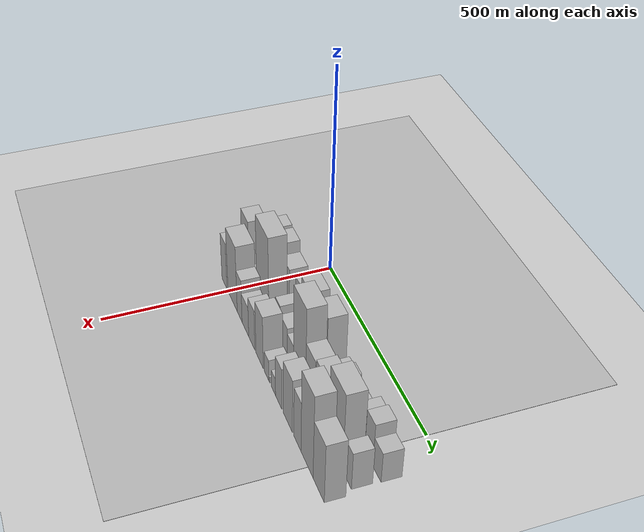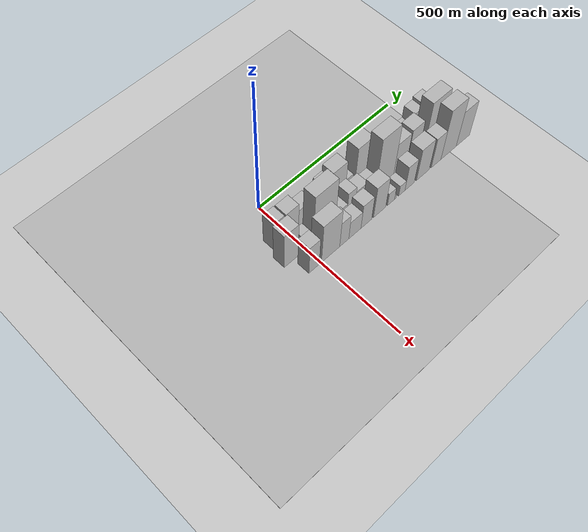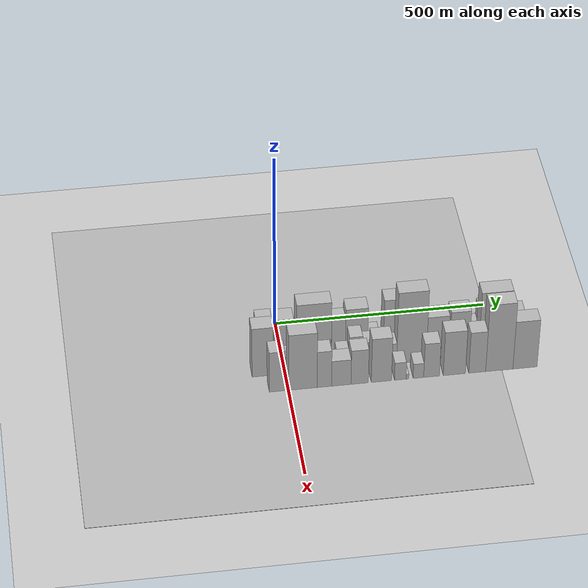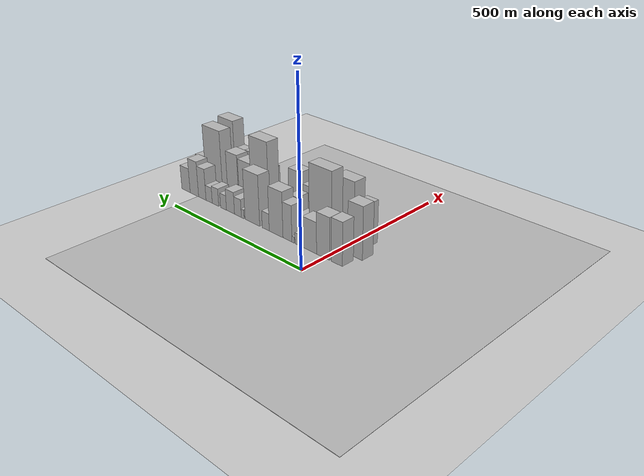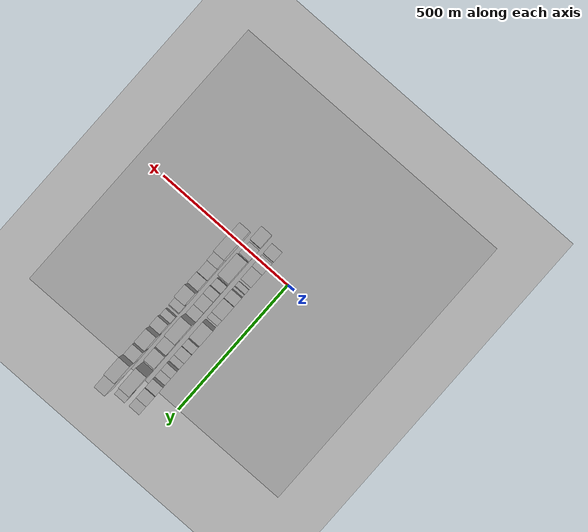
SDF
<sdf version="1.6">
 <world name="default">
  <include><name>ground_plane_1</name><uri>model://HANNAS_ground_plane</uri></include>
  <include>
   <name>ground_plane_2</name>
   <uri>model://HANNAS_ground_plane</uri>
   <pose>100 0 0  0 0 0</pose>
  </include>
  <model name="building_17">
   <static>1</static>
   <pose>100.0000 -41.7449 0 0.000000 0.000000 0.000000</pose>
   <link name="link">
    <pose>0 0 61.50 0 0 0</pose>
    <collision name="collision"><geometry><box><size>40.0000 38.1003 123.0000</size></box></geometry></collision>
    <visual name="visual">
     <cast_shadows>0</cast_shadows>
     <geometry><box><size>40.0000 38.1003 123.0000</size></box></geometry>
     <material>
      <script>
       <uri>model://HANNAS_wall/materials/scripts</uri>
       <uri>model://HANNAS_wall/materials/textures</uri>
       <name>vrc/HANNAS_wall</name>
      </script>
     </material>
    </visual>
   </link>
  </model>
  <model name="building_18">
   <static>1</static>
   <pose>100.0000 4.8909 0 0.000000 0.000000 0.000000</pose>
   <link name="link">
    <pose>0 0 60.00 0 0 0</pose>
    <collision name="collision"><geometry><box><size>40.0000 45.1713 120.0000</size></box></geometry></collision>
    <visual name="visual">
     <cast_shadows>0</cast_shadows>
     <geometry><box><size>40.0000 45.1713 120.0000</size></box></geometry>
     <material>
      <script>
       <uri>model://HANNAS_wall/materials/scripts</uri>
       <uri>model://HANNAS_wall/materials/textures</uri>
       <name>vrc/HANNAS_wall</name>
      </script>
     </material>
    </visual>
   </link>
  </model>
  <model name="building_19">
   <static>1</static>
   <pose>100.0000 52.0612 0 0.000000 0.000000 0.000000</pose>
   <link name="link">
    <pose>0 0 45.00 0 0 0</pose>
    <collision name="collision"><geometry><box><size>40.0000 49.1694 90.0000</size></box></geometry></collision>
    <visual name="visual">
     <cast_shadows>0</cast_shadows>
     <geometry><box><size>40.0000 49.1694 90.0000</size></box></geometry>
     <material>
      <script>
       <uri>model://HANNAS_wall/materials/scripts</uri>
       <uri>model://HANNAS_wall/materials/textures</uri>
       <name>vrc/HANNAS_wall</name>
      </script>
     </material>
    </visual>
   </link>
  </model>
  <model name="building_20">
   <static>1</static>
   <pose>100.0000 95.6489 0 0.000000 0.000000 0.000000</pose>
   <link name="link">
    <pose>0 0 16.50 0 0 0</pose>
    <collision name="collision"><geometry><box><size>40.0000 18.0059 33.0000</size></box></geometry></collision>
    <visual name="visual">
     <cast_shadows>0</cast_shadows>
     <geometry><box><size>40.0000 18.0059 33.0000</size></box></geometry>
     <material>
      <script>
       <uri>model://HANNAS_wall/materials/scripts</uri>
       <uri>model://HANNAS_wall/materials/textures</uri>
       <name>vrc/HANNAS_wall</name>
      </script>
     </material>
    </visual>
   </link>
  </model>
  <model name="building_21">
   <static>1</static>
   <pose>100.0000 111.9884 0 0.000000 0.000000 0.000000</pose>
   <link name="link">
    <pose>0 0 9.00 0 0 0</pose>
    <collision name="collision"><geometry><box><size>40.0000 8.6732 18.0000</size></box></geometry></collision>
    <visual name="visual">
     <cast_shadows>0</cast_shadows>
     <geometry><box><size>40.0000 8.6732 18.0000</size></box></geometry>
     <material>
      <script>
       <uri>model://HANNAS_wall/materials/scripts</uri>
       <uri>model://HANNAS_wall/materials/textures</uri>
       <name>vrc/HANNAS_wall</name>
      </script>
     </material>
    </visual>
   </link>
  </model>
  <model name="building_22">
   <static>1</static>
   <pose>100.0000 132.8876 0 0.000000 0.000000 0.000000</pose>
   <link name="link">
    <pose>0 0 52.50 0 0 0</pose>
    <collision name="collision"><geometry><box><size>40.0000 33.1251 105.0000</size></box></geometry></collision>
    <visual name="visual">
     <cast_shadows>0</cast_shadows>
     <geometry><box><size>40.0000 33.1251 105.0000</size></box></geometry>
     <material>
      <script>
       <uri>model://HANNAS_wall/materials/scripts</uri>
       <uri>model://HANNAS_wall/materials/textures</uri>
       <name>vrc/HANNAS_wall</name>
      </script>
     </material>
    </visual>
   </link>
  </model>
  <model name="building_23">
   <static>1</static>
   <pose>100.0000 175.6709 0 0.000000 0.000000 0.000000</pose>
   <link name="link">
    <pose>0 0 66.00 0 0 0</pose>
    <collision name="collision"><geometry><box><size>40.0000 52.4415 132.0000</size></box></geometry></collision>
    <visual name="visual">
     <cast_shadows>0</cast_shadows>
     <geometry><box><size>40.0000 52.4415 132.0000</size></box></geometry>
     <material>
      <script>
       <uri>model://HANNAS_wall/materials/scripts</uri>
       <uri>model://HANNAS_wall/materials/textures</uri>
       <name>vrc/HANNAS_wall</name>
      </script>
     </material>
    </visual>
   </link>
  </model>
  <model name="building_24">
   <static>1</static>
   <pose>100.0000 215.5347 0 0.000000 0.000000 0.000000</pose>
   <link name="link">
    <pose>0 0 25.50 0 0 0</pose>
    <collision name="collision"><geometry><box><size>40.0000 27.2861 51.0000</size></box></geometry></collision>
    <visual name="visual">
     <cast_shadows>0</cast_shadows>
     <geometry><box><size>40.0000 27.2861 51.0000</size></box></geometry>
     <material>
      <script>
       <uri>model://HANNAS_wall/materials/scripts</uri>
       <uri>model://HANNAS_wall/materials/textures</uri>
       <name>vrc/HANNAS_wall</name>
      </script>
     </material>
    </visual>
   </link>
  </model>
  <model name="building_25">
   <static>1</static>
   <pose>100.0000 268.4936 0 0.000000 0.000000 0.000000</pose>
   <link name="link">
    <pose>0 0 75.00 0 0 0</pose>
    <collision name="collision"><geometry><box><size>40.0000 58.6317 150.0000</size></box></geometry></collision>
    <visual name="visual">
     <cast_shadows>0</cast_shadows>
     <geometry><box><size>40.0000 58.6317 150.0000</size></box></geometry>
     <material>
      <script>
       <uri>model://HANNAS_wall/materials/scripts</uri>
       <uri>model://HANNAS_wall/materials/textures</uri>
       <name>vrc/HANNAS_wall</name>
      </script>
     </material>
    </visual>
   </link>
  </model>
  <model name="building_26">
   <static>1</static>
   <pose>100.0000 307.4521 0 0.000000 0.000000 0.000000</pose>
   <link name="link">
    <pose>0 0 13.50 0 0 0</pose>
    <collision name="collision"><geometry><box><size>40.0000 11.2853 27.0000</size></box></geometry></collision>
    <visual name="visual">
     <cast_shadows>0</cast_shadows>
     <geometry><box><size>40.0000 11.2853 27.0000</size></box></geometry>
     <material>
      <script>
       <uri>model://HANNAS_wall/materials/scripts</uri>
       <uri>model://HANNAS_wall/materials/textures</uri>
       <name>vrc/HANNAS_wall</name>
      </script>
     </material>
    </visual>
   </link>
  </model>
  <model name="building_27">
   <static>1</static>
   <pose>100.0000 327.2081 0 0.000000 0.000000 0.000000</pose>
   <link name="link">
    <pose>0 0 27.00 0 0 0</pose>
    <collision name="collision"><geometry><box><size>40.0000 28.2266 54.0000</size></box></geometry></collision>
    <visual name="visual">
     <cast_shadows>0</cast_shadows>
     <geometry><box><size>40.0000 28.2266 54.0000</size></box></geometry>
     <material>
      <script>
       <uri>model://HANNAS_wall/materials/scripts</uri>
       <uri>model://HANNAS_wall/materials/textures</uri>
       <name>vrc/HANNAS_wall</name>
      </script>
     </material>
    </visual>
   </link>
  </model>
  <model name="building_28">
   <static>1</static>
   <pose>100.0000 358.2959 0 0.000000 0.000000 0.000000</pose>
   <link name="link">
    <pose>0 0 33.00 0 0 0</pose>
    <collision name="collision"><geometry><box><size>40.0000 33.9491 66.0000</size></box></geometry></collision>
    <visual name="visual">
     <cast_shadows>0</cast_shadows>
     <geometry><box><size>40.0000 33.9491 66.0000</size></box></geometry>
     <material>
      <script>
       <uri>model://HANNAS_wall/materials/scripts</uri>
       <uri>model://HANNAS_wall/materials/textures</uri>
       <name>vrc/HANNAS_wall</name>
      </script>
     </material>
    </visual>
   </link>
  </model>
  <model name="building_29">
   <static>1</static>
   <pose>100.0000 387.8165 0 0.000000 0.000000 0.000000</pose>
   <link name="link">
    <pose>0 0 22.50 0 0 0</pose>
    <collision name="collision"><geometry><box><size>40.0000 25.0919 45.0000</size></box></geometry></collision>
    <visual name="visual">
     <cast_shadows>0</cast_shadows>
     <geometry><box><size>40.0000 25.0919 45.0000</size></box></geometry>
     <material>
      <script>
       <uri>model://HANNAS_wall/materials/scripts</uri>
       <uri>model://HANNAS_wall/materials/textures</uri>
       <name>vrc/HANNAS_wall</name>
      </script>
     </material>
    </visual>
   </link>
  </model>
  <model name="building_30">
   <static>1</static>
   <pose>100.0000 422.3995 0 0.000000 0.000000 0.000000</pose>
   <link name="link">
    <pose>0 0 27.00 0 0 0</pose>
    <collision name="collision"><geometry><box><size>40.0000 28.0742 54.0000</size></box></geometry></collision>
    <visual name="visual">
     <cast_shadows>0</cast_shadows>
     <geometry><box><size>40.0000 28.0742 54.0000</size></box></geometry>
     <material>
      <script>
       <uri>model://HANNAS_wall/materials/scripts</uri>
       <uri>model://HANNAS_wall/materials/textures</uri>
       <name>vrc/HANNAS_wall</name>
      </script>
     </material>
    </visual>
   </link>
  </model>
  <model name="building_31">
   <static>1</static>
   <pose>100.0000 450.1363 0 0.000000 0.000000 0.000000</pose>
   <link name="link">
    <pose>0 0 24.00 0 0 0</pose>
    <collision name="collision"><geometry><box><size>40.0000 27.3993 48.0000</size></box></geometry></collision>
    <visual name="visual">
     <cast_shadows>0</cast_shadows>
     <geometry><box><size>40.0000 27.3993 48.0000</size></box></geometry>
     <material>
      <script>
       <uri>model://HANNAS_wall/materials/scripts</uri>
       <uri>model://HANNAS_wall/materials/textures</uri>
       <name>vrc/HANNAS_wall</name>
      </script>
     </material>
    </visual>
   </link>
  </model>
  <model name="building_32">
   <static>1</static>
   <pose>100.0000 480.4484 0 0.000000 0.000000 0.000000</pose>
   <link name="link">
    <pose>0 0 48.00 0 0 0</pose>
    <collision name="collision"><geometry><box><size>40.0000 33.2249 96.0000</size></box></geometry></collision>
    <visual name="visual">
     <cast_shadows>0</cast_shadows>
     <geometry><box><size>40.0000 33.2249 96.0000</size></box></geometry>
     <material>
      <script>
       <uri>model://HANNAS_wall/materials/scripts</uri>
       <uri>model://HANNAS_wall/materials/textures</uri>
       <name>vrc/HANNAS_wall</name>
      </script>
     </material>
    </visual>
   </link>
  </model>
  <model name="building_33">
   <static>1</static>
   <pose>100.0000 516.2887 0 0.000000 0.000000 0.000000</pose>
   <link name="link">
    <pose>0 0 54.00 0 0 0</pose>
    <collision name="collision"><geometry><box><size>40.0000 38.4556 108.0000</size></box></geometry></collision>
    <visual name="visual">
     <cast_shadows>0</cast_shadows>
     <geometry><box><size>40.0000 38.4556 108.0000</size></box></geometry>
     <material>
      <script>
       <uri>model://HANNAS_wall/materials/scripts</uri>
       <uri>model://HANNAS_wall/materials/textures</uri>
       <name>vrc/HANNAS_wall</name>
      </script>
     </material>
    </visual>
   </link>
  </model>
  <model name="building_34">
   <static>1</static>
   <pose>100.0000 554.6955 0 0.000000 0.000000 0.000000</pose>
   <link name="link">
    <pose>0 0 37.50 0 0 0</pose>
    <collision name="collision"><geometry><box><size>40.0000 38.3582 75.0000</size></box></geometry></collision>
    <visual name="visual">
     <cast_shadows>0</cast_shadows>
     <geometry><box><size>40.0000 38.3582 75.0000</size></box></geometry>
     <material>
      <script>
       <uri>model://HANNAS_wall/materials/scripts</uri>
       <uri>model://HANNAS_wall/materials/textures</uri>
       <name>vrc/HANNAS_wall</name>
      </script>
     </material>
    </visual>
   </link>
  </model>
  <model name="building_51">
   <static>1</static>
   <pose>155.0000 -52.1764 0 0.000000 0.000000 0.000000</pose>
   <link name="link">
    <pose>0 0 75.00 0 0 0</pose>
    <collision name="collision"><geometry><box><size>40.0000 49.9542 150.0000</size></box></geometry></collision>
    <visual name="visual">
     <cast_shadows>0</cast_shadows>
     <geometry><box><size>40.0000 49.9542 150.0000</size></box></geometry>
     <material>
      <script>
       <uri>model://HANNAS_wall/materials/scripts</uri>
       <uri>model://HANNAS_wall/materials/textures</uri>
       <name>vrc/HANNAS_wall</name>
      </script>
     </material>
    </visual>
   </link>
  </model>
  <model name="building_52">
   <static>1</static>
   <pose>155.0000 -13.8800 0 0.000000 0.000000 0.000000</pose>
   <link name="link">
    <pose>0 0 15.00 0 0 0</pose>
    <collision name="collision"><geometry><box><size>40.0000 16.6385 30.0000</size></box></geometry></collision>
    <visual name="visual">
     <cast_shadows>0</cast_shadows>
     <geometry><box><size>40.0000 16.6385 30.0000</size></box></geometry>
     <material>
      <script>
       <uri>model://HANNAS_wall/materials/scripts</uri>
       <uri>model://HANNAS_wall/materials/textures</uri>
       <name>vrc/HANNAS_wall</name>
      </script>
     </material>
    </visual>
   </link>
  </model>
  <model name="building_53">
   <static>1</static>
   <pose>155.0000 9.1053 0 0.000000 0.000000 0.000000</pose>
   <link name="link">
    <pose>0 0 27.00 0 0 0</pose>
    <collision name="collision"><geometry><box><size>40.0000 29.3321 54.0000</size></box></geometry></collision>
    <visual name="visual">
     <cast_shadows>0</cast_shadows>
     <geometry><box><size>40.0000 29.3321 54.0000</size></box></geometry>
     <material>
      <script>
       <uri>model://HANNAS_wall/materials/scripts</uri>
       <uri>model://HANNAS_wall/materials/textures</uri>
       <name>vrc/HANNAS_wall</name>
      </script>
     </material>
    </visual>
   </link>
  </model>
  <model name="building_54">
   <static>1</static>
   <pose>155.0000 67.0900 0 0.000000 0.000000 0.000000</pose>
   <link name="link">
    <pose>0 0 105.00 0 0 0</pose>
    <collision name="collision"><geometry><box><size>40.0000 80.6372 210.0000</size></box></geometry></collision>
    <visual name="visual">
     <cast_shadows>0</cast_shadows>
     <geometry><box><size>40.0000 80.6372 210.0000</size></box></geometry>
     <material>
      <script>
       <uri>model://HANNAS_wall/materials/scripts</uri>
       <uri>model://HANNAS_wall/materials/textures</uri>
       <name>vrc/HANNAS_wall</name>
      </script>
     </material>
    </visual>
   </link>
  </model>
  <model name="building_55">
   <static>1</static>
   <pose>155.0000 115.5059 0 0.000000 0.000000 0.000000</pose>
   <link name="link">
    <pose>0 0 7.50 0 0 0</pose>
    <collision name="collision"><geometry><box><size>40.0000 6.1946 15.0000</size></box></geometry></collision>
    <visual name="visual">
     <cast_shadows>0</cast_shadows>
     <geometry><box><size>40.0000 6.1946 15.0000</size></box></geometry>
     <material>
      <script>
       <uri>model://HANNAS_wall/materials/scripts</uri>
       <uri>model://HANNAS_wall/materials/textures</uri>
       <name>vrc/HANNAS_wall</name>
      </script>
     </material>
    </visual>
   </link>
  </model>
  <model name="building_56">
   <static>1</static>
   <pose>155.0000 135.9411 0 0.000000 0.000000 0.000000</pose>
   <link name="link">
    <pose>0 0 25.50 0 0 0</pose>
    <collision name="collision"><geometry><box><size>40.0000 28.6758 51.0000</size></box></geometry></collision>
    <visual name="visual">
     <cast_shadows>0</cast_shadows>
     <geometry><box><size>40.0000 28.6758 51.0000</size></box></geometry>
     <material>
      <script>
       <uri>model://HANNAS_wall/materials/scripts</uri>
       <uri>model://HANNAS_wall/materials/textures</uri>
       <name>vrc/HANNAS_wall</name>
      </script>
     </material>
    </visual>
   </link>
  </model>
  <model name="building_57">
   <static>1</static>
   <pose>155.0000 165.5249 0 0.000000 0.000000 0.000000</pose>
   <link name="link">
    <pose>0 0 48.00 0 0 0</pose>
    <collision name="collision"><geometry><box><size>40.0000 30.4918 96.0000</size></box></geometry></collision>
    <visual name="visual">
     <cast_shadows>0</cast_shadows>
     <geometry><box><size>40.0000 30.4918 96.0000</size></box></geometry>
     <material>
      <script>
       <uri>model://HANNAS_wall/materials/scripts</uri>
       <uri>model://HANNAS_wall/materials/textures</uri>
       <name>vrc/HANNAS_wall</name>
      </script>
     </material>
    </visual>
   </link>
  </model>
  <model name="building_58">
   <static>1</static>
   <pose>155.0000 202.7437 0 0.000000 0.000000 0.000000</pose>
   <link name="link">
    <pose>0 0 37.50 0 0 0</pose>
    <collision name="collision"><geometry><box><size>40.0000 43.9457 75.0000</size></box></geometry></collision>
    <visual name="visual">
     <cast_shadows>0</cast_shadows>
     <geometry><box><size>40.0000 43.9457 75.0000</size></box></geometry>
     <material>
      <script>
       <uri>model://HANNAS_wall/materials/scripts</uri>
       <uri>model://HANNAS_wall/materials/textures</uri>
       <name>vrc/HANNAS_wall</name>
      </script>
     </material>
    </visual>
   </link>
  </model>
  <model name="building_59">
   <static>1</static>
   <pose>155.0000 243.1077 0 0.000000 0.000000 0.000000</pose>
   <link name="link">
    <pose>0 0 31.50 0 0 0</pose>
    <collision name="collision"><geometry><box><size>40.0000 36.7824 63.0000</size></box></geometry></collision>
    <visual name="visual">
     <cast_shadows>0</cast_shadows>
     <geometry><box><size>40.0000 36.7824 63.0000</size></box></geometry>
     <material>
      <script>
       <uri>model://HANNAS_wall/materials/scripts</uri>
       <uri>model://HANNAS_wall/materials/textures</uri>
       <name>vrc/HANNAS_wall</name>
      </script>
     </material>
    </visual>
   </link>
  </model>
  <model name="building_60">
   <static>1</static>
   <pose>155.0000 296.6853 0 0.000000 0.000000 0.000000</pose>
   <link name="link">
    <pose>0 0 109.50 0 0 0</pose>
    <collision name="collision"><geometry><box><size>40.0000 70.3727 219.0000</size></box></geometry></collision>
    <visual name="visual">
     <cast_shadows>0</cast_shadows>
     <geometry><box><size>40.0000 70.3727 219.0000</size></box></geometry>
     <material>
      <script>
       <uri>model://HANNAS_wall/materials/scripts</uri>
       <uri>model://HANNAS_wall/materials/textures</uri>
       <name>vrc/HANNAS_wall</name>
      </script>
     </material>
    </visual>
   </link>
  </model>
  <model name="building_61">
   <static>1</static>
   <pose>155.0000 357.4963 0 0.000000 0.000000 0.000000</pose>
   <link name="link">
    <pose>0 0 67.50 0 0 0</pose>
    <collision name="collision"><geometry><box><size>40.0000 51.2494 135.0000</size></box></geometry></collision>
    <visual name="visual">
     <cast_shadows>0</cast_shadows>
     <geometry><box><size>40.0000 51.2494 135.0000</size></box></geometry>
     <material>
      <script>
       <uri>model://HANNAS_wall/materials/scripts</uri>
       <uri>model://HANNAS_wall/materials/textures</uri>
       <name>vrc/HANNAS_wall</name>
      </script>
     </material>
    </visual>
   </link>
  </model>
  <model name="building_62">
   <static>1</static>
   <pose>155.0000 409.5123 0 0.000000 0.000000 0.000000</pose>
   <link name="link">
    <pose>0 0 72.00 0 0 0</pose>
    <collision name="collision"><geometry><box><size>40.0000 46.7825 144.0000</size></box></geometry></collision>
    <visual name="visual">
     <cast_shadows>0</cast_shadows>
     <geometry><box><size>40.0000 46.7825 144.0000</size></box></geometry>
     <material>
      <script>
       <uri>model://HANNAS_wall/materials/scripts</uri>
       <uri>model://HANNAS_wall/materials/textures</uri>
       <name>vrc/HANNAS_wall</name>
      </script>
     </material>
    </visual>
   </link>
  </model>
  <model name="building_63">
   <static>1</static>
   <pose>155.0000 445.6887 0 0.000000 0.000000 0.000000</pose>
   <link name="link">
    <pose>0 0 16.50 0 0 0</pose>
    <collision name="collision"><geometry><box><size>40.0000 19.5704 33.0000</size></box></geometry></collision>
    <visual name="visual">
     <cast_shadows>0</cast_shadows>
     <geometry><box><size>40.0000 19.5704 33.0000</size></box></geometry>
     <material>
      <script>
       <uri>model://HANNAS_wall/materials/scripts</uri>
       <uri>model://HANNAS_wall/materials/textures</uri>
       <name>vrc/HANNAS_wall</name>
      </script>
     </material>
    </visual>
   </link>
  </model>
  <model name="building_64">
   <static>1</static>
   <pose>155.0000 492.4043 0 0.000000 0.000000 0.000000</pose>
   <link name="link">
    <pose>0 0 97.50 0 0 0</pose>
    <collision name="collision"><geometry><box><size>40.0000 73.8607 195.0000</size></box></geometry></collision>
    <visual name="visual">
     <cast_shadows>0</cast_shadows>
     <geometry><box><size>40.0000 73.8607 195.0000</size></box></geometry>
     <material>
      <script>
       <uri>model://HANNAS_wall/materials/scripts</uri>
       <uri>model://HANNAS_wall/materials/textures</uri>
       <name>vrc/HANNAS_wall</name>
      </script>
     </material>
    </visual>
   </link>
  </model>
  <model name="building_65">
   <static>1</static>
   <pose>155.0000 555.4554 0 0.000000 0.000000 0.000000</pose>
   <link name="link">
    <pose>0 0 46.50 0 0 0</pose>
    <collision name="collision"><geometry><box><size>40.0000 32.2416 93.0000</size></box></geometry></collision>
    <visual name="visual">
     <cast_shadows>0</cast_shadows>
     <geometry><box><size>40.0000 32.2416 93.0000</size></box></geometry>
     <material>
      <script>
       <uri>model://HANNAS_wall/materials/scripts</uri>
       <uri>model://HANNAS_wall/materials/textures</uri>
       <name>vrc/HANNAS_wall</name>
      </script>
     </material>
    </visual>
   </link>
  </model>
  <model name="building_81">
   <static>1</static>
   <pose>210.0000 -25.8234 0 0.000000 0.000000 0.000000</pose>
   <link name="link">
    <pose>0 0 61.50 0 0 0</pose>
    <collision name="collision"><geometry><box><size>40.0000 37.0112 123.0000</size></box></geometry></collision>
    <visual name="visual">
     <cast_shadows>0</cast_shadows>
     <geometry><box><size>40.0000 37.0112 123.0000</size></box></geometry>
     <material>
      <script>
       <uri>model://HANNAS_wall/materials/scripts</uri>
       <uri>model://HANNAS_wall/materials/textures</uri>
       <name>vrc/HANNAS_wall</name>
      </script>
     </material>
    </visual>
   </link>
  </model>
  <model name="building_82">
   <static>1</static>
   <pose>210.0000 33.7337 0 0.000000 0.000000 0.000000</pose>
   <link name="link">
    <pose>0 0 85.50 0 0 0</pose>
    <collision name="collision"><geometry><box><size>40.0000 66.1031 171.0000</size></box></geometry></collision>
    <visual name="visual">
     <cast_shadows>0</cast_shadows>
     <geometry><box><size>40.0000 66.1031 171.0000</size></box></geometry>
     <material>
      <script>
       <uri>model://HANNAS_wall/materials/scripts</uri>
       <uri>model://HANNAS_wall/materials/textures</uri>
       <name>vrc/HANNAS_wall</name>
      </script>
     </material>
    </visual>
   </link>
  </model>
  <model name="building_83">
   <static>1</static>
   <pose>210.0000 83.6116 0 0.000000 0.000000 0.000000</pose>
   <link name="link">
    <pose>0 0 55.50 0 0 0</pose>
    <collision name="collision"><geometry><box><size>40.0000 33.6527 111.0000</size></box></geometry></collision>
    <visual name="visual">
     <cast_shadows>0</cast_shadows>
     <geometry><box><size>40.0000 33.6527 111.0000</size></box></geometry>
     <material>
      <script>
       <uri>model://HANNAS_wall/materials/scripts</uri>
       <uri>model://HANNAS_wall/materials/textures</uri>
       <name>vrc/HANNAS_wall</name>
      </script>
     </material>
    </visual>
   </link>
  </model>
  <model name="building_84">
   <static>1</static>
   <pose>210.0000 123.0802 0 0.000000 0.000000 0.000000</pose>
   <link name="link">
    <pose>0 0 39.00 0 0 0</pose>
    <collision name="collision"><geometry><box><size>40.0000 45.2846 78.0000</size></box></geometry></collision>
    <visual name="visual">
     <cast_shadows>0</cast_shadows>
     <geometry><box><size>40.0000 45.2846 78.0000</size></box></geometry>
     <material>
      <script>
       <uri>model://HANNAS_wall/materials/scripts</uri>
       <uri>model://HANNAS_wall/materials/textures</uri>
       <name>vrc/HANNAS_wall</name>
      </script>
     </material>
    </visual>
   </link>
  </model>
  <model name="building_85">
   <static>1</static>
   <pose>210.0000 166.0316 0 0.000000 0.000000 0.000000</pose>
   <link name="link">
    <pose>0 0 52.50 0 0 0</pose>
    <collision name="collision"><geometry><box><size>40.0000 40.6182 105.0000</size></box></geometry></collision>
    <visual name="visual">
     <cast_shadows>0</cast_shadows>
     <geometry><box><size>40.0000 40.6182 105.0000</size></box></geometry>
     <material>
      <script>
       <uri>model://HANNAS_wall/materials/scripts</uri>
       <uri>model://HANNAS_wall/materials/textures</uri>
       <name>vrc/HANNAS_wall</name>
      </script>
     </material>
    </visual>
   </link>
  </model>
  <model name="building_86">
   <static>1</static>
   <pose>210.0000 216.9131 0 0.000000 0.000000 0.000000</pose>
   <link name="link">
    <pose>0 0 67.50 0 0 0</pose>
    <collision name="collision"><geometry><box><size>40.0000 47.1447 135.0000</size></box></geometry></collision>
    <visual name="visual">
     <cast_shadows>0</cast_shadows>
     <geometry><box><size>40.0000 47.1447 135.0000</size></box></geometry>
     <material>
      <script>
       <uri>model://HANNAS_wall/materials/scripts</uri>
       <uri>model://HANNAS_wall/materials/textures</uri>
       <name>vrc/HANNAS_wall</name>
      </script>
     </material>
    </visual>
   </link>
  </model>
  <model name="building_87">
   <static>1</static>
   <pose>210.0000 261.1110 0 0.000000 0.000000 0.000000</pose>
   <link name="link">
    <pose>0 0 27.00 0 0 0</pose>
    <collision name="collision"><geometry><box><size>40.0000 27.2512 54.0000</size></box></geometry></collision>
    <visual name="visual">
     <cast_shadows>0</cast_shadows>
     <geometry><box><size>40.0000 27.2512 54.0000</size></box></geometry>
     <material>
      <script>
       <uri>model://HANNAS_wall/materials/scripts</uri>
       <uri>model://HANNAS_wall/materials/textures</uri>
       <name>vrc/HANNAS_wall</name>
      </script>
     </material>
    </visual>
   </link>
  </model>
  <model name="building_88">
   <static>1</static>
   <pose>210.0000 277.9756 0 0.000000 0.000000 0.000000</pose>
   <link name="link">
    <pose>0 0 7.50 0 0 0</pose>
    <collision name="collision"><geometry><box><size>40.0000 6.4781 15.0000</size></box></geometry></collision>
    <visual name="visual">
     <cast_shadows>0</cast_shadows>
     <geometry><box><size>40.0000 6.4781 15.0000</size></box></geometry>
     <material>
      <script>
       <uri>model://HANNAS_wall/materials/scripts</uri>
       <uri>model://HANNAS_wall/materials/textures</uri>
       <name>vrc/HANNAS_wall</name>
      </script>
     </material>
    </visual>
   </link>
  </model>
  <model name="building_89">
   <static>1</static>
   <pose>210.0000 303.6351 0 0.000000 0.000000 0.000000</pose>
   <link name="link">
    <pose>0 0 22.50 0 0 0</pose>
    <collision name="collision"><geometry><box><size>40.0000 24.8410 45.0000</size></box></geometry></collision>
    <visual name="visual">
     <cast_shadows>0</cast_shadows>
     <geometry><box><size>40.0000 24.8410 45.0000</size></box></geometry>
     <material>
      <script>
       <uri>model://HANNAS_wall/materials/scripts</uri>
       <uri>model://HANNAS_wall/materials/textures</uri>
       <name>vrc/HANNAS_wall</name>
      </script>
     </material>
    </visual>
   </link>
  </model>
  <model name="building_90">
   <static>1</static>
   <pose>210.0000 334.5806 0 0.000000 0.000000 0.000000</pose>
   <link name="link">
    <pose>0 0 52.50 0 0 0</pose>
    <collision name="collision"><geometry><box><size>40.0000 37.0499 105.0000</size></box></geometry></collision>
    <visual name="visual">
     <cast_shadows>0</cast_shadows>
     <geometry><box><size>40.0000 37.0499 105.0000</size></box></geometry>
     <material>
      <script>
       <uri>model://HANNAS_wall/materials/scripts</uri>
       <uri>model://HANNAS_wall/materials/textures</uri>
       <name>vrc/HANNAS_wall</name>
      </script>
     </material>
    </visual>
   </link>
  </model>
  <model name="building_91">
   <static>1</static>
   <pose>210.0000 388.1367 0 0.000000 0.000000 0.000000</pose>
   <link name="link">
    <pose>0 0 67.50 0 0 0</pose>
    <collision name="collision"><geometry><box><size>40.0000 52.0624 135.0000</size></box></geometry></collision>
    <visual name="visual">
     <cast_shadows>0</cast_shadows>
     <geometry><box><size>40.0000 52.0624 135.0000</size></box></geometry>
     <material>
      <script>
       <uri>model://HANNAS_wall/materials/scripts</uri>
       <uri>model://HANNAS_wall/materials/textures</uri>
       <name>vrc/HANNAS_wall</name>
      </script>
     </material>
    </visual>
   </link>
  </model>
  <model name="building_92">
   <static>1</static>
   <pose>210.0000 442.0187 0 0.000000 0.000000 0.000000</pose>
   <link name="link">
    <pose>0 0 63.00 0 0 0</pose>
    <collision name="collision"><geometry><box><size>40.0000 39.7016 126.0000</size></box></geometry></collision>
    <visual name="visual">
     <cast_shadows>0</cast_shadows>
     <geometry><box><size>40.0000 39.7016 126.0000</size></box></geometry>
     <material>
      <script>
       <uri>model://HANNAS_wall/materials/scripts</uri>
       <uri>model://HANNAS_wall/materials/textures</uri>
       <name>vrc/HANNAS_wall</name>
      </script>
     </material>
    </visual>
   </link>
  </model>
  <model name="building_93">
   <static>1</static>
   <pose>210.0000 493.9959 0 0.000000 0.000000 0.000000</pose>
   <link name="link">
    <pose>0 0 103.50 0 0 0</pose>
    <collision name="collision"><geometry><box><size>40.0000 64.2528 207.0000</size></box></geometry></collision>
    <visual name="visual">
     <cast_shadows>0</cast_shadows>
     <geometry><box><size>40.0000 64.2528 207.0000</size></box></geometry>
     <material>
      <script>
       <uri>model://HANNAS_wall/materials/scripts</uri>
       <uri>model://HANNAS_wall/materials/textures</uri>
       <name>vrc/HANNAS_wall</name>
      </script>
     </material>
    </visual>
   </link>
  </model>
  <model name="building_94">
   <static>1</static>
   <pose>210.0000 554.7462 0 0.000000 0.000000 0.000000</pose>
   <link name="link">
    <pose>0 0 73.50 0 0 0</pose>
    <collision name="collision"><geometry><box><size>40.0000 57.2478 147.0000</size></box></geometry></collision>
    <visual name="visual">
     <cast_shadows>0</cast_shadows>
     <geometry><box><size>40.0000 57.2478 147.0000</size></box></geometry>
     <material>
      <script>
       <uri>model://HANNAS_wall/materials/scripts</uri>
       <uri>model://HANNAS_wall/materials/textures</uri>
       <name>vrc/HANNAS_wall</name>
      </script>
     </material>
    </visual>
   </link>
  </model>
 </world>
</sdf>
